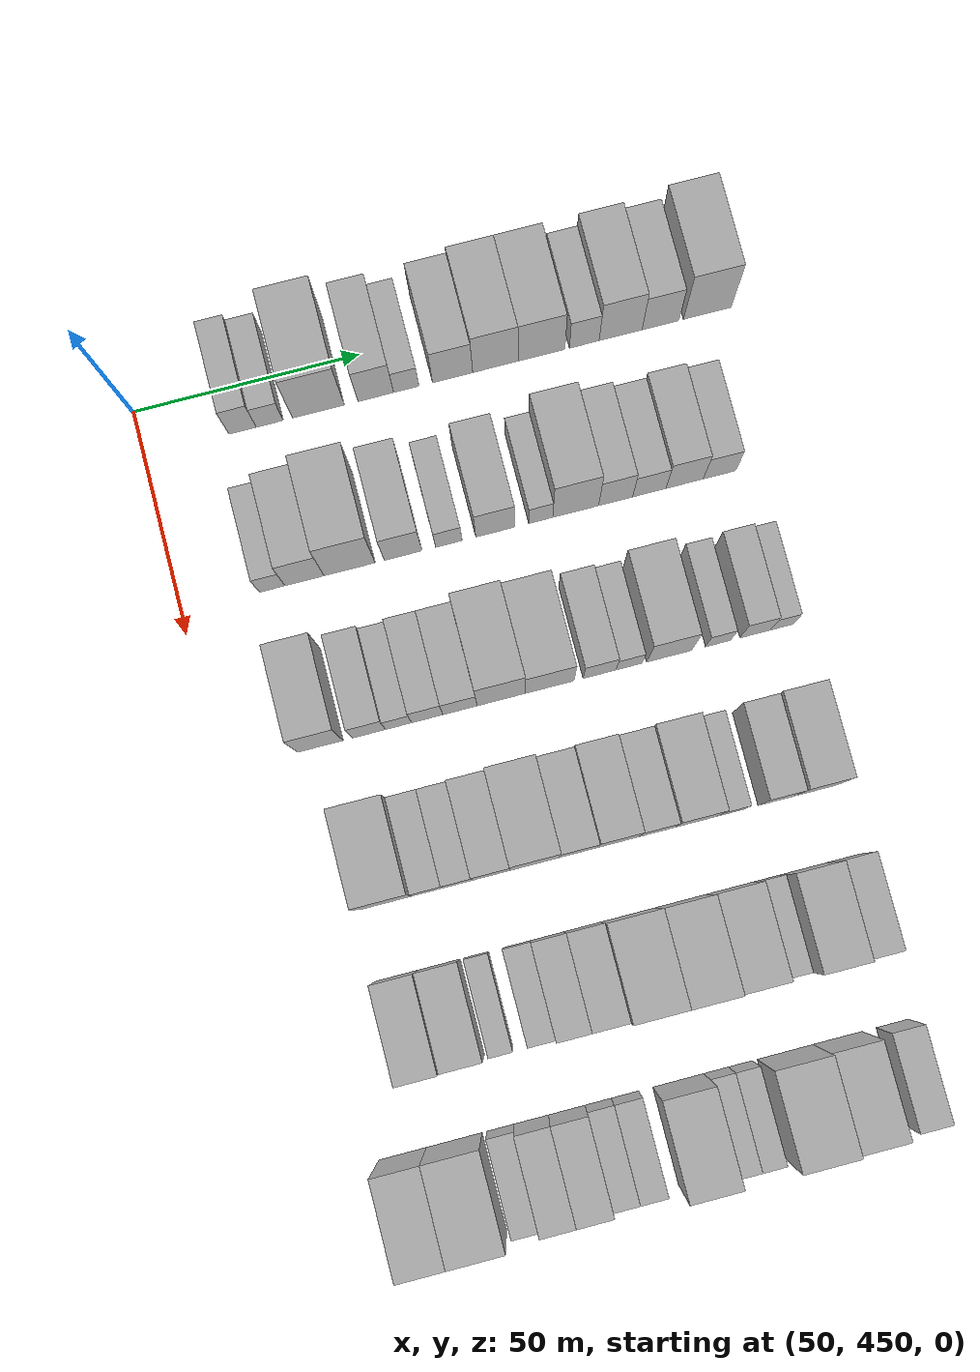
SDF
<sdf version="1.6">
 <world name="default">
  <model name="building_109">
   <static>1</static>
   <pose>50.0000 471.8091 0 0.000000 0.000000 0.000000</pose>
   <link name="link">
    <pose>0 0 7.50 0 0 0</pose>
    <collision name="collision"><geometry><box><size>20.0000 6.0043 15.0000</size></box></geometry></collision>
    <visual name="visual">
     <cast_shadows>0</cast_shadows>
     <geometry><box><size>20.0000 6.0043 15.0000</size></box></geometry>
     <material>
      <script>
       <uri>model://HANNAS_wall/materials/scripts</uri>
       <uri>model://HANNAS_wall/materials/textures</uri>
       <name>vrc/HANNAS_wall</name>
      </script>
     </material>
    </visual>
   </link>
  </model>
  <model name="building_110">
   <static>1</static>
   <pose>50.0000 477.7863 0 0.000000 0.000000 0.000000</pose>
   <link name="link">
    <pose>0 0 6.00 0 0 0</pose>
    <collision name="collision"><geometry><box><size>20.0000 5.9499 12.0000</size></box></geometry></collision>
    <visual name="visual">
     <cast_shadows>0</cast_shadows>
     <geometry><box><size>20.0000 5.9499 12.0000</size></box></geometry>
     <material>
      <script>
       <uri>model://HANNAS_wall/materials/scripts</uri>
       <uri>model://HANNAS_wall/materials/textures</uri>
       <name>vrc/HANNAS_wall</name>
      </script>
     </material>
    </visual>
   </link>
  </model>
  <model name="building_111">
   <static>1</static>
   <pose>50.0000 488.4780 0 0.000000 0.000000 0.000000</pose>
   <link name="link">
    <pose>0 0 12.00 0 0 0</pose>
    <collision name="collision"><geometry><box><size>20.0000 11.4336 24.0000</size></box></geometry></collision>
    <visual name="visual">
     <cast_shadows>0</cast_shadows>
     <geometry><box><size>20.0000 11.4336 24.0000</size></box></geometry>
     <material>
      <script>
       <uri>model://HANNAS_wall/materials/scripts</uri>
       <uri>model://HANNAS_wall/materials/textures</uri>
       <name>vrc/HANNAS_wall</name>
      </script>
     </material>
    </visual>
   </link>
  </model>
  <model name="building_112">
   <static>1</static>
   <pose>50.0000 501.1357 0 0.000000 0.000000 0.000000</pose>
   <link name="link">
    <pose>0 0 9.00 0 0 0</pose>
    <collision name="collision"><geometry><box><size>20.0000 7.8817 18.0000</size></box></geometry></collision>
    <visual name="visual">
     <cast_shadows>0</cast_shadows>
     <geometry><box><size>20.0000 7.8817 18.0000</size></box></geometry>
     <material>
      <script>
       <uri>model://HANNAS_wall/materials/scripts</uri>
       <uri>model://HANNAS_wall/materials/textures</uri>
       <name>vrc/HANNAS_wall</name>
      </script>
     </material>
    </visual>
   </link>
  </model>
  <model name="building_113">
   <static>1</static>
   <pose>50.0000 507.8735 0 0.000000 0.000000 0.000000</pose>
   <link name="link">
    <pose>0 0 6.00 0 0 0</pose>
    <collision name="collision"><geometry><box><size>20.0000 5.5940 12.0000</size></box></geometry></collision>
    <visual name="visual">
     <cast_shadows>0</cast_shadows>
     <geometry><box><size>20.0000 5.5940 12.0000</size></box></geometry>
     <material>
      <script>
       <uri>model://HANNAS_wall/materials/scripts</uri>
       <uri>model://HANNAS_wall/materials/textures</uri>
       <name>vrc/HANNAS_wall</name>
      </script>
     </material>
    </visual>
   </link>
  </model>
  <model name="building_114">
   <static>1</static>
   <pose>50.0000 518.1155 0 0.000000 0.000000 0.000000</pose>
   <link name="link">
    <pose>0 0 9.00 0 0 0</pose>
    <collision name="collision"><geometry><box><size>20.0000 8.8900 18.0000</size></box></geometry></collision>
    <visual name="visual">
     <cast_shadows>0</cast_shadows>
     <geometry><box><size>20.0000 8.8900 18.0000</size></box></geometry>
     <material>
      <script>
       <uri>model://HANNAS_wall/materials/scripts</uri>
       <uri>model://HANNAS_wall/materials/textures</uri>
       <name>vrc/HANNAS_wall</name>
      </script>
     </material>
    </visual>
   </link>
  </model>
  <model name="building_115">
   <static>1</static>
   <pose>50.0000 527.6248 0 0.000000 0.000000 0.000000</pose>
   <link name="link">
    <pose>0 0 10.50 0 0 0</pose>
    <collision name="collision"><geometry><box><size>20.0000 10.1286 21.0000</size></box></geometry></collision>
    <visual name="visual">
     <cast_shadows>0</cast_shadows>
     <geometry><box><size>20.0000 10.1286 21.0000</size></box></geometry>
     <material>
      <script>
       <uri>model://HANNAS_wall/materials/scripts</uri>
       <uri>model://HANNAS_wall/materials/textures</uri>
       <name>vrc/HANNAS_wall</name>
      </script>
     </material>
    </visual>
   </link>
  </model>
  <model name="building_116">
   <static>1</static>
   <pose>50.0000 537.8489 0 0.000000 0.000000 0.000000</pose>
   <link name="link">
    <pose>0 0 10.50 0 0 0</pose>
    <collision name="collision"><geometry><box><size>20.0000 10.3196 21.0000</size></box></geometry></collision>
    <visual name="visual">
     <cast_shadows>0</cast_shadows>
     <geometry><box><size>20.0000 10.3196 21.0000</size></box></geometry>
     <material>
      <script>
       <uri>model://HANNAS_wall/materials/scripts</uri>
       <uri>model://HANNAS_wall/materials/textures</uri>
       <name>vrc/HANNAS_wall</name>
      </script>
     </material>
    </visual>
   </link>
  </model>
  <model name="building_117">
   <static>1</static>
   <pose>50.0000 547.3136 0 0.000000 0.000000 0.000000</pose>
   <link name="link">
    <pose>0 0 7.50 0 0 0</pose>
    <collision name="collision"><geometry><box><size>20.0000 6.6098 15.0000</size></box></geometry></collision>
    <visual name="visual">
     <cast_shadows>0</cast_shadows>
     <geometry><box><size>20.0000 6.6098 15.0000</size></box></geometry>
     <material>
      <script>
       <uri>model://HANNAS_wall/materials/scripts</uri>
       <uri>model://HANNAS_wall/materials/textures</uri>
       <name>vrc/HANNAS_wall</name>
      </script>
     </material>
    </visual>
   </link>
  </model>
  <model name="building_118">
   <static>1</static>
   <pose>50.0000 555.4102 0 0.000000 0.000000 0.000000</pose>
   <link name="link">
    <pose>0 0 10.50 0 0 0</pose>
    <collision name="collision"><geometry><box><size>20.0000 9.5833 21.0000</size></box></geometry></collision>
    <visual name="visual">
     <cast_shadows>0</cast_shadows>
     <geometry><box><size>20.0000 9.5833 21.0000</size></box></geometry>
     <material>
      <script>
       <uri>model://HANNAS_wall/materials/scripts</uri>
       <uri>model://HANNAS_wall/materials/textures</uri>
       <name>vrc/HANNAS_wall</name>
      </script>
     </material>
    </visual>
   </link>
  </model>
  <model name="building_119">
   <static>1</static>
   <pose>50.0000 564.3036 0 0.000000 0.000000 0.000000</pose>
   <link name="link">
    <pose>0 0 9.00 0 0 0</pose>
    <collision name="collision"><geometry><box><size>20.0000 8.2036 18.0000</size></box></geometry></collision>
    <visual name="visual">
     <cast_shadows>0</cast_shadows>
     <geometry><box><size>20.0000 8.2036 18.0000</size></box></geometry>
     <material>
      <script>
       <uri>model://HANNAS_wall/materials/scripts</uri>
       <uri>model://HANNAS_wall/materials/textures</uri>
       <name>vrc/HANNAS_wall</name>
      </script>
     </material>
    </visual>
   </link>
  </model>
  <model name="building_120">
   <static>1</static>
   <pose>50.0000 574.7262 0 0.000000 0.000000 0.000000</pose>
   <link name="link">
    <pose>0 0 12.00 0 0 0</pose>
    <collision name="collision"><geometry><box><size>20.0000 10.6416 24.0000</size></box></geometry></collision>
    <visual name="visual">
     <cast_shadows>0</cast_shadows>
     <geometry><box><size>20.0000 10.6416 24.0000</size></box></geometry>
     <material>
      <script>
       <uri>model://HANNAS_wall/materials/scripts</uri>
       <uri>model://HANNAS_wall/materials/textures</uri>
       <name>vrc/HANNAS_wall</name>
      </script>
     </material>
    </visual>
   </link>
  </model>
  <model name="building_232">
   <static>1</static>
   <pose>85.0000 469.8332 0 0.000000 0.000000 0.000000</pose>
   <link name="link">
    <pose>0 0 6.00 0 0 0</pose>
    <collision name="collision"><geometry><box><size>20.0000 5.5574 12.0000</size></box></geometry></collision>
    <visual name="visual">
     <cast_shadows>0</cast_shadows>
     <geometry><box><size>20.0000 5.5574 12.0000</size></box></geometry>
     <material>
      <script>
       <uri>model://HANNAS_wall/materials/scripts</uri>
       <uri>model://HANNAS_wall/materials/textures</uri>
       <name>vrc/HANNAS_wall</name>
      </script>
     </material>
    </visual>
   </link>
  </model>
  <model name="building_233">
   <static>1</static>
   <pose>85.0000 476.8737 0 0.000000 0.000000 0.000000</pose>
   <link name="link">
    <pose>0 0 9.00 0 0 0</pose>
    <collision name="collision"><geometry><box><size>20.0000 8.5235 18.0000</size></box></geometry></collision>
    <visual name="visual">
     <cast_shadows>0</cast_shadows>
     <geometry><box><size>20.0000 8.5235 18.0000</size></box></geometry>
     <material>
      <script>
       <uri>model://HANNAS_wall/materials/scripts</uri>
       <uri>model://HANNAS_wall/materials/textures</uri>
       <name>vrc/HANNAS_wall</name>
      </script>
     </material>
    </visual>
   </link>
  </model>
  <model name="building_234">
   <static>1</static>
   <pose>85.0000 486.6955 0 0.000000 0.000000 0.000000</pose>
   <link name="link">
    <pose>0 0 12.00 0 0 0</pose>
    <collision name="collision"><geometry><box><size>20.0000 11.1201 24.0000</size></box></geometry></collision>
    <visual name="visual">
     <cast_shadows>0</cast_shadows>
     <geometry><box><size>20.0000 11.1201 24.0000</size></box></geometry>
     <material>
      <script>
       <uri>model://HANNAS_wall/materials/scripts</uri>
       <uri>model://HANNAS_wall/materials/textures</uri>
       <name>vrc/HANNAS_wall</name>
      </script>
     </material>
    </visual>
   </link>
  </model>
  <model name="building_235">
   <static>1</static>
   <pose>85.0000 498.3726 0 0.000000 0.000000 0.000000</pose>
   <link name="link">
    <pose>0 0 9.00 0 0 0</pose>
    <collision name="collision"><geometry><box><size>20.0000 8.2342 18.0000</size></box></geometry></collision>
    <visual name="visual">
     <cast_shadows>0</cast_shadows>
     <geometry><box><size>20.0000 8.2342 18.0000</size></box></geometry>
     <material>
      <script>
       <uri>model://HANNAS_wall/materials/scripts</uri>
       <uri>model://HANNAS_wall/materials/textures</uri>
       <name>vrc/HANNAS_wall</name>
      </script>
     </material>
    </visual>
   </link>
  </model>
  <model name="building_236">
   <static>1</static>
   <pose>85.0000 508.3749 0 0.000000 0.000000 0.000000</pose>
   <link name="link">
    <pose>0 0 6.00 0 0 0</pose>
    <collision name="collision"><geometry><box><size>20.0000 5.7704 12.0000</size></box></geometry></collision>
    <visual name="visual">
     <cast_shadows>0</cast_shadows>
     <geometry><box><size>20.0000 5.7704 12.0000</size></box></geometry>
     <material>
      <script>
       <uri>model://HANNAS_wall/materials/scripts</uri>
       <uri>model://HANNAS_wall/materials/textures</uri>
       <name>vrc/HANNAS_wall</name>
      </script>
     </material>
    </visual>
   </link>
  </model>
  <model name="building_237">
   <static>1</static>
   <pose>85.0000 518.5527 0 0.000000 0.000000 0.000000</pose>
   <link name="link">
    <pose>0 0 9.00 0 0 0</pose>
    <collision name="collision"><geometry><box><size>20.0000 8.5852 18.0000</size></box></geometry></collision>
    <visual name="visual">
     <cast_shadows>0</cast_shadows>
     <geometry><box><size>20.0000 8.5852 18.0000</size></box></geometry>
     <material>
      <script>
       <uri>model://HANNAS_wall/materials/scripts</uri>
       <uri>model://HANNAS_wall/materials/textures</uri>
       <name>vrc/HANNAS_wall</name>
      </script>
     </material>
    </visual>
   </link>
  </model>
  <model name="building_238">
   <static>1</static>
   <pose>85.0000 528.4883 0 0.000000 0.000000 0.000000</pose>
   <link name="link">
    <pose>0 0 6.00 0 0 0</pose>
    <collision name="collision"><geometry><box><size>20.0000 5.2860 12.0000</size></box></geometry></collision>
    <visual name="visual">
     <cast_shadows>0</cast_shadows>
     <geometry><box><size>20.0000 5.2860 12.0000</size></box></geometry>
     <material>
      <script>
       <uri>model://HANNAS_wall/materials/scripts</uri>
       <uri>model://HANNAS_wall/materials/textures</uri>
       <name>vrc/HANNAS_wall</name>
      </script>
     </material>
    </visual>
   </link>
  </model>
  <model name="building_239">
   <static>1</static>
   <pose>85.0000 536.1651 0 0.000000 0.000000 0.000000</pose>
   <link name="link">
    <pose>0 0 12.00 0 0 0</pose>
    <collision name="collision"><geometry><box><size>20.0000 10.0675 24.0000</size></box></geometry></collision>
    <visual name="visual">
     <cast_shadows>0</cast_shadows>
     <geometry><box><size>20.0000 10.0675 24.0000</size></box></geometry>
     <material>
      <script>
       <uri>model://HANNAS_wall/materials/scripts</uri>
       <uri>model://HANNAS_wall/materials/textures</uri>
       <name>vrc/HANNAS_wall</name>
      </script>
     </material>
    </visual>
   </link>
  </model>
  <model name="building_240">
   <static>1</static>
   <pose>85.0000 544.9443 0 0.000000 0.000000 0.000000</pose>
   <link name="link">
    <pose>0 0 9.00 0 0 0</pose>
    <collision name="collision"><geometry><box><size>20.0000 7.4909 18.0000</size></box></geometry></collision>
    <visual name="visual">
     <cast_shadows>0</cast_shadows>
     <geometry><box><size>20.0000 7.4909 18.0000</size></box></geometry>
     <material>
      <script>
       <uri>model://HANNAS_wall/materials/scripts</uri>
       <uri>model://HANNAS_wall/materials/textures</uri>
       <name>vrc/HANNAS_wall</name>
      </script>
     </material>
    </visual>
   </link>
  </model>
  <model name="building_241">
   <static>1</static>
   <pose>85.0000 552.3556 0 0.000000 0.000000 0.000000</pose>
   <link name="link">
    <pose>0 0 7.50 0 0 0</pose>
    <collision name="collision"><geometry><box><size>20.0000 7.3317 15.0000</size></box></geometry></collision>
    <visual name="visual">
     <cast_shadows>0</cast_shadows>
     <geometry><box><size>20.0000 7.3317 15.0000</size></box></geometry>
     <material>
      <script>
       <uri>model://HANNAS_wall/materials/scripts</uri>
       <uri>model://HANNAS_wall/materials/textures</uri>
       <name>vrc/HANNAS_wall</name>
      </script>
     </material>
    </visual>
   </link>
  </model>
  <model name="building_242">
   <static>1</static>
   <pose>85.0000 560.1437 0 0.000000 0.000000 0.000000</pose>
   <link name="link">
    <pose>0 0 9.00 0 0 0</pose>
    <collision name="collision"><geometry><box><size>20.0000 8.2445 18.0000</size></box></geometry></collision>
    <visual name="visual">
     <cast_shadows>0</cast_shadows>
     <geometry><box><size>20.0000 8.2445 18.0000</size></box></geometry>
     <material>
      <script>
       <uri>model://HANNAS_wall/materials/scripts</uri>
       <uri>model://HANNAS_wall/materials/textures</uri>
       <name>vrc/HANNAS_wall</name>
      </script>
     </material>
    </visual>
   </link>
  </model>
  <model name="building_243">
   <static>1</static>
   <pose>85.0000 567.8448 0 0.000000 0.000000 0.000000</pose>
   <link name="link">
    <pose>0 0 7.50 0 0 0</pose>
    <collision name="collision"><geometry><box><size>20.0000 7.1576 15.0000</size></box></geometry></collision>
    <visual name="visual">
     <cast_shadows>0</cast_shadows>
     <geometry><box><size>20.0000 7.1576 15.0000</size></box></geometry>
     <material>
      <script>
       <uri>model://HANNAS_wall/materials/scripts</uri>
       <uri>model://HANNAS_wall/materials/textures</uri>
       <name>vrc/HANNAS_wall</name>
      </script>
     </material>
    </visual>
   </link>
  </model>
  <model name="building_363">
   <static>1</static>
   <pose>120.0000 471.7619 0 0.000000 0.000000 0.000000</pose>
   <link name="link">
    <pose>0 0 10.50 0 0 0</pose>
    <collision name="collision"><geometry><box><size>20.0000 9.7331 21.0000</size></box></geometry></collision>
    <visual name="visual">
     <cast_shadows>0</cast_shadows>
     <geometry><box><size>20.0000 9.7331 21.0000</size></box></geometry>
     <material>
      <script>
       <uri>model://HANNAS_wall/materials/scripts</uri>
       <uri>model://HANNAS_wall/materials/textures</uri>
       <name>vrc/HANNAS_wall</name>
      </script>
     </material>
    </visual>
   </link>
  </model>
  <model name="building_364">
   <static>1</static>
   <pose>120.0000 482.2062 0 0.000000 0.000000 0.000000</pose>
   <link name="link">
    <pose>0 0 7.50 0 0 0</pose>
    <collision name="collision"><geometry><box><size>20.0000 7.1555 15.0000</size></box></geometry></collision>
    <visual name="visual">
     <cast_shadows>0</cast_shadows>
     <geometry><box><size>20.0000 7.1555 15.0000</size></box></geometry>
     <material>
      <script>
       <uri>model://HANNAS_wall/materials/scripts</uri>
       <uri>model://HANNAS_wall/materials/textures</uri>
       <name>vrc/HANNAS_wall</name>
      </script>
     </material>
    </visual>
   </link>
  </model>
  <model name="building_365">
   <static>1</static>
   <pose>120.0000 488.6000 0 0.000000 0.000000 0.000000</pose>
   <link name="link">
    <pose>0 0 6.00 0 0 0</pose>
    <collision name="collision"><geometry><box><size>20.0000 5.6321 12.0000</size></box></geometry></collision>
    <visual name="visual">
     <cast_shadows>0</cast_shadows>
     <geometry><box><size>20.0000 5.6321 12.0000</size></box></geometry>
     <material>
      <script>
       <uri>model://HANNAS_wall/materials/scripts</uri>
       <uri>model://HANNAS_wall/materials/textures</uri>
       <name>vrc/HANNAS_wall</name>
      </script>
     </material>
    </visual>
   </link>
  </model>
  <model name="building_366">
   <static>1</static>
   <pose>120.0000 494.7964 0 0.000000 0.000000 0.000000</pose>
   <link name="link">
    <pose>0 0 7.50 0 0 0</pose>
    <collision name="collision"><geometry><box><size>20.0000 6.7607 15.0000</size></box></geometry></collision>
    <visual name="visual">
     <cast_shadows>0</cast_shadows>
     <geometry><box><size>20.0000 6.7607 15.0000</size></box></geometry>
     <material>
      <script>
       <uri>model://HANNAS_wall/materials/scripts</uri>
       <uri>model://HANNAS_wall/materials/textures</uri>
       <name>vrc/HANNAS_wall</name>
      </script>
     </material>
    </visual>
   </link>
  </model>
  <model name="building_367">
   <static>1</static>
   <pose>120.0000 501.8696 0 0.000000 0.000000 0.000000</pose>
   <link name="link">
    <pose>0 0 7.50 0 0 0</pose>
    <collision name="collision"><geometry><box><size>20.0000 7.3857 15.0000</size></box></geometry></collision>
    <visual name="visual">
     <cast_shadows>0</cast_shadows>
     <geometry><box><size>20.0000 7.3857 15.0000</size></box></geometry>
     <material>
      <script>
       <uri>model://HANNAS_wall/materials/scripts</uri>
       <uri>model://HANNAS_wall/materials/textures</uri>
       <name>vrc/HANNAS_wall</name>
      </script>
     </material>
    </visual>
   </link>
  </model>
  <model name="building_368">
   <static>1</static>
   <pose>120.0000 510.7990 0 0.000000 0.000000 0.000000</pose>
   <link name="link">
    <pose>0 0 12.00 0 0 0</pose>
    <collision name="collision"><geometry><box><size>20.0000 10.4731 24.0000</size></box></geometry></collision>
    <visual name="visual">
     <cast_shadows>0</cast_shadows>
     <geometry><box><size>20.0000 10.4731 24.0000</size></box></geometry>
     <material>
      <script>
       <uri>model://HANNAS_wall/materials/scripts</uri>
       <uri>model://HANNAS_wall/materials/textures</uri>
       <name>vrc/HANNAS_wall</name>
      </script>
     </material>
    </visual>
   </link>
  </model>
  <model name="building_369">
   <static>1</static>
   <pose>120.0000 521.2789 0 0.000000 0.000000 0.000000</pose>
   <link name="link">
    <pose>0 0 10.50 0 0 0</pose>
    <collision name="collision"><geometry><box><size>20.0000 10.4866 21.0000</size></box></geometry></collision>
    <visual name="visual">
     <cast_shadows>0</cast_shadows>
     <geometry><box><size>20.0000 10.4866 21.0000</size></box></geometry>
     <material>
      <script>
       <uri>model://HANNAS_wall/materials/scripts</uri>
       <uri>model://HANNAS_wall/materials/textures</uri>
       <name>vrc/HANNAS_wall</name>
      </script>
     </material>
    </visual>
   </link>
  </model>
  <model name="building_370">
   <static>1</static>
   <pose>120.0000 532.0816 0 0.000000 0.000000 0.000000</pose>
   <link name="link">
    <pose>0 0 7.50 0 0 0</pose>
    <collision name="collision"><geometry><box><size>20.0000 7.1187 15.0000</size></box></geometry></collision>
    <visual name="visual">
     <cast_shadows>0</cast_shadows>
     <geometry><box><size>20.0000 7.1187 15.0000</size></box></geometry>
     <material>
      <script>
       <uri>model://HANNAS_wall/materials/scripts</uri>
       <uri>model://HANNAS_wall/materials/textures</uri>
       <name>vrc/HANNAS_wall</name>
      </script>
     </material>
    </visual>
   </link>
  </model>
  <model name="building_371">
   <static>1</static>
   <pose>120.0000 538.4889 0 0.000000 0.000000 0.000000</pose>
   <link name="link">
    <pose>0 0 6.00 0 0 0</pose>
    <collision name="collision"><geometry><box><size>20.0000 5.6958 12.0000</size></box></geometry></collision>
    <visual name="visual">
     <cast_shadows>0</cast_shadows>
     <geometry><box><size>20.0000 5.6958 12.0000</size></box></geometry>
     <material>
      <script>
       <uri>model://HANNAS_wall/materials/scripts</uri>
       <uri>model://HANNAS_wall/materials/textures</uri>
       <name>vrc/HANNAS_wall</name>
      </script>
     </material>
    </visual>
   </link>
  </model>
  <model name="building_372">
   <static>1</static>
   <pose>120.0000 547.2580 0 0.000000 0.000000 0.000000</pose>
   <link name="link">
    <pose>0 0 10.50 0 0 0</pose>
    <collision name="collision"><geometry><box><size>20.0000 9.8425 21.0000</size></box></geometry></collision>
    <visual name="visual">
     <cast_shadows>0</cast_shadows>
     <geometry><box><size>20.0000 9.8425 21.0000</size></box></geometry>
     <material>
      <script>
       <uri>model://HANNAS_wall/materials/scripts</uri>
       <uri>model://HANNAS_wall/materials/textures</uri>
       <name>vrc/HANNAS_wall</name>
      </script>
     </material>
    </visual>
   </link>
  </model>
  <model name="building_373">
   <static>1</static>
   <pose>120.0000 557.9404 0 0.000000 0.000000 0.000000</pose>
   <link name="link">
    <pose>0 0 6.00 0 0 0</pose>
    <collision name="collision"><geometry><box><size>20.0000 5.5224 12.0000</size></box></geometry></collision>
    <visual name="visual">
     <cast_shadows>0</cast_shadows>
     <geometry><box><size>20.0000 5.5224 12.0000</size></box></geometry>
     <material>
      <script>
       <uri>model://HANNAS_wall/materials/scripts</uri>
       <uri>model://HANNAS_wall/materials/textures</uri>
       <name>vrc/HANNAS_wall</name>
      </script>
     </material>
    </visual>
   </link>
  </model>
  <model name="building_374">
   <static>1</static>
   <pose>120.0000 566.0451 0 0.000000 0.000000 0.000000</pose>
   <link name="link">
    <pose>0 0 7.50 0 0 0</pose>
    <collision name="collision"><geometry><box><size>20.0000 6.6871 15.0000</size></box></geometry></collision>
    <visual name="visual">
     <cast_shadows>0</cast_shadows>
     <geometry><box><size>20.0000 6.6871 15.0000</size></box></geometry>
     <material>
      <script>
       <uri>model://HANNAS_wall/materials/scripts</uri>
       <uri>model://HANNAS_wall/materials/textures</uri>
       <name>vrc/HANNAS_wall</name>
      </script>
     </material>
    </visual>
   </link>
  </model>
  <model name="building_375">
   <static>1</static>
   <pose>120.0000 571.8591 0 0.000000 0.000000 0.000000</pose>
   <link name="link">
    <pose>0 0 6.00 0 0 0</pose>
    <collision name="collision"><geometry><box><size>20.0000 4.9409 12.0000</size></box></geometry></collision>
    <visual name="visual">
     <cast_shadows>0</cast_shadows>
     <geometry><box><size>20.0000 4.9409 12.0000</size></box></geometry>
     <material>
      <script>
       <uri>model://HANNAS_wall/materials/scripts</uri>
       <uri>model://HANNAS_wall/materials/textures</uri>
       <name>vrc/HANNAS_wall</name>
      </script>
     </material>
    </visual>
   </link>
  </model>
  <model name="building_485">
   <static>1</static>
   <pose>155.0000 477.3913 0 0.000000 0.000000 0.000000</pose>
   <link name="link">
    <pose>0 0 12.00 0 0 0</pose>
    <collision name="collision"><geometry><box><size>20.0000 11.3457 24.0000</size></box></geometry></collision>
    <visual name="visual">
     <cast_shadows>0</cast_shadows>
     <geometry><box><size>20.0000 11.3457 24.0000</size></box></geometry>
     <material>
      <script>
       <uri>model://HANNAS_wall/materials/scripts</uri>
       <uri>model://HANNAS_wall/materials/textures</uri>
       <name>vrc/HANNAS_wall</name>
      </script>
     </material>
    </visual>
   </link>
  </model>
  <model name="building_486">
   <static>1</static>
   <pose>155.0000 486.2533 0 0.000000 0.000000 0.000000</pose>
   <link name="link">
    <pose>0 0 7.50 0 0 0</pose>
    <collision name="collision"><geometry><box><size>20.0000 6.3784 15.0000</size></box></geometry></collision>
    <visual name="visual">
     <cast_shadows>0</cast_shadows>
     <geometry><box><size>20.0000 6.3784 15.0000</size></box></geometry>
     <material>
      <script>
       <uri>model://HANNAS_wall/materials/scripts</uri>
       <uri>model://HANNAS_wall/materials/textures</uri>
       <name>vrc/HANNAS_wall</name>
      </script>
     </material>
    </visual>
   </link>
  </model>
  <model name="building_487">
   <static>1</static>
   <pose>155.0000 492.5527 0 0.000000 0.000000 0.000000</pose>
   <link name="link">
    <pose>0 0 7.50 0 0 0</pose>
    <collision name="collision"><geometry><box><size>20.0000 6.2204 15.0000</size></box></geometry></collision>
    <visual name="visual">
     <cast_shadows>0</cast_shadows>
     <geometry><box><size>20.0000 6.2204 15.0000</size></box></geometry>
     <material>
      <script>
       <uri>model://HANNAS_wall/materials/scripts</uri>
       <uri>model://HANNAS_wall/materials/textures</uri>
       <name>vrc/HANNAS_wall</name>
      </script>
     </material>
    </visual>
   </link>
  </model>
  <model name="building_488">
   <static>1</static>
   <pose>155.0000 499.6385 0 0.000000 0.000000 0.000000</pose>
   <link name="link">
    <pose>0 0 9.00 0 0 0</pose>
    <collision name="collision"><geometry><box><size>20.0000 7.9513 18.0000</size></box></geometry></collision>
    <visual name="visual">
     <cast_shadows>0</cast_shadows>
     <geometry><box><size>20.0000 7.9513 18.0000</size></box></geometry>
     <material>
      <script>
       <uri>model://HANNAS_wall/materials/scripts</uri>
       <uri>model://HANNAS_wall/materials/textures</uri>
       <name>vrc/HANNAS_wall</name>
      </script>
     </material>
    </visual>
   </link>
  </model>
  <model name="building_489">
   <static>1</static>
   <pose>155.0000 508.8502 0 0.000000 0.000000 0.000000</pose>
   <link name="link">
    <pose>0 0 12.00 0 0 0</pose>
    <collision name="collision"><geometry><box><size>20.0000 10.4722 24.0000</size></box></geometry></collision>
    <visual name="visual">
     <cast_shadows>0</cast_shadows>
     <geometry><box><size>20.0000 10.4722 24.0000</size></box></geometry>
     <material>
      <script>
       <uri>model://HANNAS_wall/materials/scripts</uri>
       <uri>model://HANNAS_wall/materials/textures</uri>
       <name>vrc/HANNAS_wall</name>
      </script>
     </material>
    </visual>
   </link>
  </model>
  <model name="building_490">
   <static>1</static>
   <pose>155.0000 518.1207 0 0.000000 0.000000 0.000000</pose>
   <link name="link">
    <pose>0 0 9.00 0 0 0</pose>
    <collision name="collision"><geometry><box><size>20.0000 8.0687 18.0000</size></box></geometry></collision>
    <visual name="visual">
     <cast_shadows>0</cast_shadows>
     <geometry><box><size>20.0000 8.0687 18.0000</size></box></geometry>
     <material>
      <script>
       <uri>model://HANNAS_wall/materials/scripts</uri>
       <uri>model://HANNAS_wall/materials/textures</uri>
       <name>vrc/HANNAS_wall</name>
      </script>
     </material>
    </visual>
   </link>
  </model>
  <model name="building_491">
   <static>1</static>
   <pose>155.0000 526.6159 0 0.000000 0.000000 0.000000</pose>
   <link name="link">
    <pose>0 0 10.50 0 0 0</pose>
    <collision name="collision"><geometry><box><size>20.0000 8.9218 21.0000</size></box></geometry></collision>
    <visual name="visual">
     <cast_shadows>0</cast_shadows>
     <geometry><box><size>20.0000 8.9218 21.0000</size></box></geometry>
     <material>
      <script>
       <uri>model://HANNAS_wall/materials/scripts</uri>
       <uri>model://HANNAS_wall/materials/textures</uri>
       <name>vrc/HANNAS_wall</name>
      </script>
     </material>
    </visual>
   </link>
  </model>
  <model name="building_492">
   <static>1</static>
   <pose>155.0000 534.8503 0 0.000000 0.000000 0.000000</pose>
   <link name="link">
    <pose>0 0 9.00 0 0 0</pose>
    <collision name="collision"><geometry><box><size>20.0000 7.5469 18.0000</size></box></geometry></collision>
    <visual name="visual">
     <cast_shadows>0</cast_shadows>
     <geometry><box><size>20.0000 7.5469 18.0000</size></box></geometry>
     <material>
      <script>
       <uri>model://HANNAS_wall/materials/scripts</uri>
       <uri>model://HANNAS_wall/materials/textures</uri>
       <name>vrc/HANNAS_wall</name>
      </script>
     </material>
    </visual>
   </link>
  </model>
  <model name="building_493">
   <static>1</static>
   <pose>155.0000 543.3714 0 0.000000 0.000000 0.000000</pose>
   <link name="link">
    <pose>0 0 10.50 0 0 0</pose>
    <collision name="collision"><geometry><box><size>20.0000 9.4953 21.0000</size></box></geometry></collision>
    <visual name="visual">
     <cast_shadows>0</cast_shadows>
     <geometry><box><size>20.0000 9.4953 21.0000</size></box></geometry>
     <material>
      <script>
       <uri>model://HANNAS_wall/materials/scripts</uri>
       <uri>model://HANNAS_wall/materials/textures</uri>
       <name>vrc/HANNAS_wall</name>
      </script>
     </material>
    </visual>
   </link>
  </model>
  <model name="building_494">
   <static>1</static>
   <pose>155.0000 551.0268 0 0.000000 0.000000 0.000000</pose>
   <link name="link">
    <pose>0 0 6.00 0 0 0</pose>
    <collision name="collision"><geometry><box><size>20.0000 5.8156 12.0000</size></box></geometry></collision>
    <visual name="visual">
     <cast_shadows>0</cast_shadows>
     <geometry><box><size>20.0000 5.8156 12.0000</size></box></geometry>
     <material>
      <script>
       <uri>model://HANNAS_wall/materials/scripts</uri>
       <uri>model://HANNAS_wall/materials/textures</uri>
       <name>vrc/HANNAS_wall</name>
      </script>
     </material>
    </visual>
   </link>
  </model>
  <model name="building_495">
   <static>1</static>
   <pose>155.0000 560.7797 0 0.000000 0.000000 0.000000</pose>
   <link name="link">
    <pose>0 0 9.00 0 0 0</pose>
    <collision name="collision"><geometry><box><size>20.0000 7.6902 18.0000</size></box></geometry></collision>
    <visual name="visual">
     <cast_shadows>0</cast_shadows>
     <geometry><box><size>20.0000 7.6902 18.0000</size></box></geometry>
     <material>
      <script>
       <uri>model://HANNAS_wall/materials/scripts</uri>
       <uri>model://HANNAS_wall/materials/textures</uri>
       <name>vrc/HANNAS_wall</name>
      </script>
     </material>
    </visual>
   </link>
  </model>
  <model name="building_496">
   <static>1</static>
   <pose>155.0000 569.3356 0 0.000000 0.000000 0.000000</pose>
   <link name="link">
    <pose>0 0 10.50 0 0 0</pose>
    <collision name="collision"><geometry><box><size>20.0000 9.4217 21.0000</size></box></geometry></collision>
    <visual name="visual">
     <cast_shadows>0</cast_shadows>
     <geometry><box><size>20.0000 9.4217 21.0000</size></box></geometry>
     <material>
      <script>
       <uri>model://HANNAS_wall/materials/scripts</uri>
       <uri>model://HANNAS_wall/materials/textures</uri>
       <name>vrc/HANNAS_wall</name>
      </script>
     </material>
    </visual>
   </link>
  </model>
  <model name="building_613">
   <static>1</static>
   <pose>190.0000 475.8881 0 0.000000 0.000000 0.000000</pose>
   <link name="link">
    <pose>0 0 10.50 0 0 0</pose>
    <collision name="collision"><geometry><box><size>20.0000 8.7828 21.0000</size></box></geometry></collision>
    <visual name="visual">
     <cast_shadows>0</cast_shadows>
     <geometry><box><size>20.0000 8.7828 21.0000</size></box></geometry>
     <material>
      <script>
       <uri>model://HANNAS_wall/materials/scripts</uri>
       <uri>model://HANNAS_wall/materials/textures</uri>
       <name>vrc/HANNAS_wall</name>
      </script>
     </material>
    </visual>
   </link>
  </model>
  <model name="building_614">
   <static>1</static>
   <pose>190.0000 484.6991 0 0.000000 0.000000 0.000000</pose>
   <link name="link">
    <pose>0 0 9.00 0 0 0</pose>
    <collision name="collision"><geometry><box><size>20.0000 8.8392 18.0000</size></box></geometry></collision>
    <visual name="visual">
     <cast_shadows>0</cast_shadows>
     <geometry><box><size>20.0000 8.8392 18.0000</size></box></geometry>
     <material>
      <script>
       <uri>model://HANNAS_wall/materials/scripts</uri>
       <uri>model://HANNAS_wall/materials/textures</uri>
       <name>vrc/HANNAS_wall</name>
      </script>
     </material>
    </visual>
   </link>
  </model>
  <model name="building_615">
   <static>1</static>
   <pose>190.0000 492.6375 0 0.000000 0.000000 0.000000</pose>
   <link name="link">
    <pose>0 0 6.00 0 0 0</pose>
    <collision name="collision"><geometry><box><size>20.0000 5.0376 12.0000</size></box></geometry></collision>
    <visual name="visual">
     <cast_shadows>0</cast_shadows>
     <geometry><box><size>20.0000 5.0376 12.0000</size></box></geometry>
     <material>
      <script>
       <uri>model://HANNAS_wall/materials/scripts</uri>
       <uri>model://HANNAS_wall/materials/textures</uri>
       <name>vrc/HANNAS_wall</name>
      </script>
     </material>
    </visual>
   </link>
  </model>
  <model name="building_616">
   <static>1</static>
   <pose>190.0000 501.0619 0 0.000000 0.000000 0.000000</pose>
   <link name="link">
    <pose>0 0 6.00 0 0 0</pose>
    <collision name="collision"><geometry><box><size>20.0000 5.8112 12.0000</size></box></geometry></collision>
    <visual name="visual">
     <cast_shadows>0</cast_shadows>
     <geometry><box><size>20.0000 5.8112 12.0000</size></box></geometry>
     <material>
      <script>
       <uri>model://HANNAS_wall/materials/scripts</uri>
       <uri>model://HANNAS_wall/materials/textures</uri>
       <name>vrc/HANNAS_wall</name>
      </script>
     </material>
    </visual>
   </link>
  </model>
  <model name="building_617">
   <static>1</static>
   <pose>190.0000 507.5869 0 0.000000 0.000000 0.000000</pose>
   <link name="link">
    <pose>0 0 9.00 0 0 0</pose>
    <collision name="collision"><geometry><box><size>20.0000 7.2389 18.0000</size></box></geometry></collision>
    <visual name="visual">
     <cast_shadows>0</cast_shadows>
     <geometry><box><size>20.0000 7.2389 18.0000</size></box></geometry>
     <material>
      <script>
       <uri>model://HANNAS_wall/materials/scripts</uri>
       <uri>model://HANNAS_wall/materials/textures</uri>
       <name>vrc/HANNAS_wall</name>
      </script>
     </material>
    </visual>
   </link>
  </model>
  <model name="building_618">
   <static>1</static>
   <pose>190.0000 515.1501 0 0.000000 0.000000 0.000000</pose>
   <link name="link">
    <pose>0 0 9.00 0 0 0</pose>
    <collision name="collision"><geometry><box><size>20.0000 7.8875 18.0000</size></box></geometry></collision>
    <visual name="visual">
     <cast_shadows>0</cast_shadows>
     <geometry><box><size>20.0000 7.8875 18.0000</size></box></geometry>
     <material>
      <script>
       <uri>model://HANNAS_wall/materials/scripts</uri>
       <uri>model://HANNAS_wall/materials/textures</uri>
       <name>vrc/HANNAS_wall</name>
      </script>
     </material>
    </visual>
   </link>
  </model>
  <model name="building_619">
   <static>1</static>
   <pose>190.0000 524.8543 0 0.000000 0.000000 0.000000</pose>
   <link name="link">
    <pose>0 0 12.00 0 0 0</pose>
    <collision name="collision"><geometry><box><size>20.0000 11.5209 24.0000</size></box></geometry></collision>
    <visual name="visual">
     <cast_shadows>0</cast_shadows>
     <geometry><box><size>20.0000 11.5209 24.0000</size></box></geometry>
     <material>
      <script>
       <uri>model://HANNAS_wall/materials/scripts</uri>
       <uri>model://HANNAS_wall/materials/textures</uri>
       <name>vrc/HANNAS_wall</name>
      </script>
     </material>
    </visual>
   </link>
  </model>
  <model name="building_620">
   <static>1</static>
   <pose>190.0000 535.9046 0 0.000000 0.000000 0.000000</pose>
   <link name="link">
    <pose>0 0 12.00 0 0 0</pose>
    <collision name="collision"><geometry><box><size>20.0000 10.5797 24.0000</size></box></geometry></collision>
    <visual name="visual">
     <cast_shadows>0</cast_shadows>
     <geometry><box><size>20.0000 10.5797 24.0000</size></box></geometry>
     <material>
      <script>
       <uri>model://HANNAS_wall/materials/scripts</uri>
       <uri>model://HANNAS_wall/materials/textures</uri>
       <name>vrc/HANNAS_wall</name>
      </script>
     </material>
    </visual>
   </link>
  </model>
  <model name="building_621">
   <static>1</static>
   <pose>190.0000 546.2518 0 0.000000 0.000000 0.000000</pose>
   <link name="link">
    <pose>0 0 10.50 0 0 0</pose>
    <collision name="collision"><geometry><box><size>20.0000 10.1146 21.0000</size></box></geometry></collision>
    <visual name="visual">
     <cast_shadows>0</cast_shadows>
     <geometry><box><size>20.0000 10.1146 21.0000</size></box></geometry>
     <material>
      <script>
       <uri>model://HANNAS_wall/materials/scripts</uri>
       <uri>model://HANNAS_wall/materials/textures</uri>
       <name>vrc/HANNAS_wall</name>
      </script>
     </material>
    </visual>
   </link>
  </model>
  <model name="building_622">
   <static>1</static>
   <pose>190.0000 554.1203 0 0.000000 0.000000 0.000000</pose>
   <link name="link">
    <pose>0 0 6.00 0 0 0</pose>
    <collision name="collision"><geometry><box><size>20.0000 5.6223 12.0000</size></box></geometry></collision>
    <visual name="visual">
     <cast_shadows>0</cast_shadows>
     <geometry><box><size>20.0000 5.6223 12.0000</size></box></geometry>
     <material>
      <script>
       <uri>model://HANNAS_wall/materials/scripts</uri>
       <uri>model://HANNAS_wall/materials/textures</uri>
       <name>vrc/HANNAS_wall</name>
      </script>
     </material>
    </visual>
   </link>
  </model>
  <model name="building_623">
   <static>1</static>
   <pose>190.0000 561.9412 0 0.000000 0.000000 0.000000</pose>
   <link name="link">
    <pose>0 0 12.00 0 0 0</pose>
    <collision name="collision"><geometry><box><size>20.0000 10.0195 24.0000</size></box></geometry></collision>
    <visual name="visual">
     <cast_shadows>0</cast_shadows>
     <geometry><box><size>20.0000 10.0195 24.0000</size></box></geometry>
     <material>
      <script>
       <uri>model://HANNAS_wall/materials/scripts</uri>
       <uri>model://HANNAS_wall/materials/textures</uri>
       <name>vrc/HANNAS_wall</name>
      </script>
     </material>
    </visual>
   </link>
  </model>
  <model name="building_624">
   <static>1</static>
   <pose>190.0000 570.8039 0 0.000000 0.000000 0.000000</pose>
   <link name="link">
    <pose>0 0 9.00 0 0 0</pose>
    <collision name="collision"><geometry><box><size>20.0000 7.7059 18.0000</size></box></geometry></collision>
    <visual name="visual">
     <cast_shadows>0</cast_shadows>
     <geometry><box><size>20.0000 7.7059 18.0000</size></box></geometry>
     <material>
      <script>
       <uri>model://HANNAS_wall/materials/scripts</uri>
       <uri>model://HANNAS_wall/materials/textures</uri>
       <name>vrc/HANNAS_wall</name>
      </script>
     </material>
    </visual>
   </link>
  </model>
  <model name="building_727">
   <static>1</static>
   <pose>225.0000 468.1077 0 0.000000 0.000000 0.000000</pose>
   <link name="link">
    <pose>0 0 12.00 0 0 0</pose>
    <collision name="collision"><geometry><box><size>20.0000 9.9575 24.0000</size></box></geometry></collision>
    <visual name="visual">
     <cast_shadows>0</cast_shadows>
     <geometry><box><size>20.0000 9.9575 24.0000</size></box></geometry>
     <material>
      <script>
       <uri>model://HANNAS_wall/materials/scripts</uri>
       <uri>model://HANNAS_wall/materials/textures</uri>
       <name>vrc/HANNAS_wall</name>
      </script>
     </material>
    </visual>
   </link>
  </model>
  <model name="building_728">
   <static>1</static>
   <pose>225.0000 478.9254 0 0.000000 0.000000 0.000000</pose>
   <link name="link">
    <pose>0 0 12.00 0 0 0</pose>
    <collision name="collision"><geometry><box><size>20.0000 11.6780 24.0000</size></box></geometry></collision>
    <visual name="visual">
     <cast_shadows>0</cast_shadows>
     <geometry><box><size>20.0000 11.6780 24.0000</size></box></geometry>
     <material>
      <script>
       <uri>model://HANNAS_wall/materials/scripts</uri>
       <uri>model://HANNAS_wall/materials/textures</uri>
       <name>vrc/HANNAS_wall</name>
      </script>
     </material>
    </visual>
   </link>
  </model>
  <model name="building_729">
   <static>1</static>
   <pose>225.0000 488.5841 0 0.000000 0.000000 0.000000</pose>
   <link name="link">
    <pose>0 0 6.00 0 0 0</pose>
    <collision name="collision"><geometry><box><size>20.0000 5.6393 12.0000</size></box></geometry></collision>
    <visual name="visual">
     <cast_shadows>0</cast_shadows>
     <geometry><box><size>20.0000 5.6393 12.0000</size></box></geometry>
     <material>
      <script>
       <uri>model://HANNAS_wall/materials/scripts</uri>
       <uri>model://HANNAS_wall/materials/textures</uri>
       <name>vrc/HANNAS_wall</name>
      </script>
     </material>
    </visual>
   </link>
  </model>
  <model name="building_730">
   <static>1</static>
   <pose>225.0000 495.0744 0 0.000000 0.000000 0.000000</pose>
   <link name="link">
    <pose>0 0 9.00 0 0 0</pose>
    <collision name="collision"><geometry><box><size>20.0000 7.3414 18.0000</size></box></geometry></collision>
    <visual name="visual">
     <cast_shadows>0</cast_shadows>
     <geometry><box><size>20.0000 7.3414 18.0000</size></box></geometry>
     <material>
      <script>
       <uri>model://HANNAS_wall/materials/scripts</uri>
       <uri>model://HANNAS_wall/materials/textures</uri>
       <name>vrc/HANNAS_wall</name>
      </script>
     </material>
    </visual>
   </link>
  </model>
  <model name="building_731">
   <static>1</static>
   <pose>225.0000 502.5726 0 0.000000 0.000000 0.000000</pose>
   <link name="link">
    <pose>0 0 9.00 0 0 0</pose>
    <collision name="collision"><geometry><box><size>20.0000 7.6549 18.0000</size></box></geometry></collision>
    <visual name="visual">
     <cast_shadows>0</cast_shadows>
     <geometry><box><size>20.0000 7.6549 18.0000</size></box></geometry>
     <material>
      <script>
       <uri>model://HANNAS_wall/materials/scripts</uri>
       <uri>model://HANNAS_wall/materials/textures</uri>
       <name>vrc/HANNAS_wall</name>
      </script>
     </material>
    </visual>
   </link>
  </model>
  <model name="building_732">
   <static>1</static>
   <pose>225.0000 509.1647 0 0.000000 0.000000 0.000000</pose>
   <link name="link">
    <pose>0 0 6.00 0 0 0</pose>
    <collision name="collision"><geometry><box><size>20.0000 5.5294 12.0000</size></box></geometry></collision>
    <visual name="visual">
     <cast_shadows>0</cast_shadows>
     <geometry><box><size>20.0000 5.5294 12.0000</size></box></geometry>
     <material>
      <script>
       <uri>model://HANNAS_wall/materials/scripts</uri>
       <uri>model://HANNAS_wall/materials/textures</uri>
       <name>vrc/HANNAS_wall</name>
      </script>
     </material>
    </visual>
   </link>
  </model>
  <model name="building_733">
   <static>1</static>
   <pose>225.0000 514.8309 0 0.000000 0.000000 0.000000</pose>
   <link name="link">
    <pose>0 0 6.00 0 0 0</pose>
    <collision name="collision"><geometry><box><size>20.0000 5.8028 12.0000</size></box></geometry></collision>
    <visual name="visual">
     <cast_shadows>0</cast_shadows>
     <geometry><box><size>20.0000 5.8028 12.0000</size></box></geometry>
     <material>
      <script>
       <uri>model://HANNAS_wall/materials/scripts</uri>
       <uri>model://HANNAS_wall/materials/textures</uri>
       <name>vrc/HANNAS_wall</name>
      </script>
     </material>
    </visual>
   </link>
  </model>
  <model name="building_734">
   <static>1</static>
   <pose>225.0000 526.1449 0 0.000000 0.000000 0.000000</pose>
   <link name="link">
    <pose>0 0 12.00 0 0 0</pose>
    <collision name="collision"><geometry><box><size>20.0000 10.8253 24.0000</size></box></geometry></collision>
    <visual name="visual">
     <cast_shadows>0</cast_shadows>
     <geometry><box><size>20.0000 10.8253 24.0000</size></box></geometry>
     <material>
      <script>
       <uri>model://HANNAS_wall/materials/scripts</uri>
       <uri>model://HANNAS_wall/materials/textures</uri>
       <name>vrc/HANNAS_wall</name>
      </script>
     </material>
    </visual>
   </link>
  </model>
  <model name="building_735">
   <static>1</static>
   <pose>225.0000 534.1716 0 0.000000 0.000000 0.000000</pose>
   <link name="link">
    <pose>0 0 6.00 0 0 0</pose>
    <collision name="collision"><geometry><box><size>20.0000 5.2282 12.0000</size></box></geometry></collision>
    <visual name="visual">
     <cast_shadows>0</cast_shadows>
     <geometry><box><size>20.0000 5.2282 12.0000</size></box></geometry>
     <material>
      <script>
       <uri>model://HANNAS_wall/materials/scripts</uri>
       <uri>model://HANNAS_wall/materials/textures</uri>
       <name>vrc/HANNAS_wall</name>
      </script>
     </material>
    </visual>
   </link>
  </model>
  <model name="building_736">
   <static>1</static>
   <pose>225.0000 539.3273 0 0.000000 0.000000 0.000000</pose>
   <link name="link">
    <pose>0 0 6.00 0 0 0</pose>
    <collision name="collision"><geometry><box><size>20.0000 5.0831 12.0000</size></box></geometry></collision>
    <visual name="visual">
     <cast_shadows>0</cast_shadows>
     <geometry><box><size>20.0000 5.0831 12.0000</size></box></geometry>
     <material>
      <script>
       <uri>model://HANNAS_wall/materials/scripts</uri>
       <uri>model://HANNAS_wall/materials/textures</uri>
       <name>vrc/HANNAS_wall</name>
      </script>
     </material>
    </visual>
   </link>
  </model>
  <model name="building_737">
   <static>1</static>
   <pose>225.0000 548.8186 0 0.000000 0.000000 0.000000</pose>
   <link name="link">
    <pose>0 0 12.00 0 0 0</pose>
    <collision name="collision"><geometry><box><size>20.0000 11.8995 24.0000</size></box></geometry></collision>
    <visual name="visual">
     <cast_shadows>0</cast_shadows>
     <geometry><box><size>20.0000 11.8995 24.0000</size></box></geometry>
     <material>
      <script>
       <uri>model://HANNAS_wall/materials/scripts</uri>
       <uri>model://HANNAS_wall/materials/textures</uri>
       <name>vrc/HANNAS_wall</name>
      </script>
     </material>
    </visual>
   </link>
  </model>
  <model name="building_738">
   <static>1</static>
   <pose>225.0000 559.9845 0 0.000000 0.000000 0.000000</pose>
   <link name="link">
    <pose>0 0 10.50 0 0 0</pose>
    <collision name="collision"><geometry><box><size>20.0000 10.4322 21.0000</size></box></geometry></collision>
    <visual name="visual">
     <cast_shadows>0</cast_shadows>
     <geometry><box><size>20.0000 10.4322 21.0000</size></box></geometry>
     <material>
      <script>
       <uri>model://HANNAS_wall/materials/scripts</uri>
       <uri>model://HANNAS_wall/materials/textures</uri>
       <name>vrc/HANNAS_wall</name>
      </script>
     </material>
    </visual>
   </link>
  </model>
  <model name="building_739">
   <static>1</static>
   <pose>225.0000 571.6386 0 0.000000 0.000000 0.000000</pose>
   <link name="link">
    <pose>0 0 7.50 0 0 0</pose>
    <collision name="collision"><geometry><box><size>20.0000 6.8760 15.0000</size></box></geometry></collision>
    <visual name="visual">
     <cast_shadows>0</cast_shadows>
     <geometry><box><size>20.0000 6.8760 15.0000</size></box></geometry>
     <material>
      <script>
       <uri>model://HANNAS_wall/materials/scripts</uri>
       <uri>model://HANNAS_wall/materials/textures</uri>
       <name>vrc/HANNAS_wall</name>
      </script>
     </material>
    </visual>
   </link>
  </model>
 </world>
</sdf>
